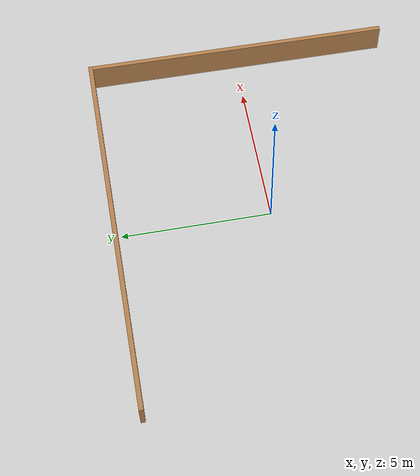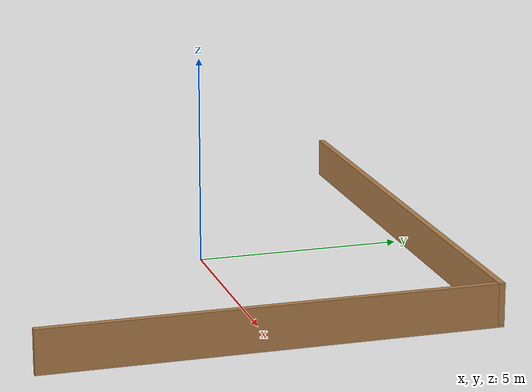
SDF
<?xml version='1.0'?>
<sdf version='1.7'>
  <model name='wooden_fence'>
    <link name='Wall_14'>
      <pose>6.425 0 -0.775596 0 -0 1.5708</pose>
      <self_collide>0</self_collide>
      <enable_wind>0</enable_wind>
      <kinematic>0</kinematic>
      <inertial>
        <inertia>
          <ixx>0</ixx>
          <ixy>0</ixy>
          <ixz>0</ixz>
          <iyy>0</iyy>
          <iyz>0</iyz>
          <izz>0</izz>
        </inertia>
        <mass>0</mass>
        <pose>0 0 0 0 -0 0</pose>
      </inertial>
      <visual name='Wall_14_Visual'>
        <pose>0 0 1.25 0 -0 0</pose>
        <geometry>
          <box>
            <size>10.5 0.15 1.0201</size>
          </box>
        </geometry>
        <material>
          <script>
            <uri>file://media/materials/scripts/gazebo.material</uri>
            <name>Gazebo/Wood</name>
          </script>
          <ambient>1 1 1 1</ambient>
          <shader type='pixel'/>
        </material>
        <meta>
          <layer>0</layer>
        </meta>
        <transparency>0</transparency>
        <cast_shadows>1</cast_shadows>
      </visual>
      <collision name='Wall_14_Collision'>
        <laser_retro>0</laser_retro>
        <max_contacts>10</max_contacts>
        <pose>0 0 1.25 0 -0 0</pose>
        <geometry>
          <box>
            <size>10.5 0.15 1.0201</size>
          </box>
        </geometry>
        <surface>
          <friction>
            <ode>
              <mu>1</mu>
              <mu2>1</mu2>
              <fdir1>0 0 0</fdir1>
              <slip1>0</slip1>
              <slip2>0</slip2>
            </ode>
            <torsional>
              <coefficient>1</coefficient>
              <patch_radius>0</patch_radius>
              <surface_radius>0</surface_radius>
              <use_patch_radius>1</use_patch_radius>
              <ode>
                <slip>0</slip>
              </ode>
            </torsional>
          </friction>
          <bounce>
            <restitution_coefficient>0</restitution_coefficient>
            <threshold>1e+06</threshold>
          </bounce>
          <contact>
            <collide_without_contact>0</collide_without_contact>
            <collide_without_contact_bitmask>1</collide_without_contact_bitmask>
            <collide_bitmask>1</collide_bitmask>
            <ode>
              <soft_cfm>0</soft_cfm>
              <soft_erp>0.2</soft_erp>
              <kp>1e+13</kp>
              <kd>1</kd>
              <max_vel>0.01</max_vel>
              <min_depth>0</min_depth>
            </ode>
            <bullet>
              <split_impulse>1</split_impulse>
              <split_impulse_penetration_threshold>-0.01</split_impulse_penetration_threshold>
              <soft_cfm>0</soft_cfm>
              <soft_erp>0.2</soft_erp>
              <kp>1e+13</kp>
              <kd>1</kd>
            </bullet>
          </contact>
        </surface>
      </collision>
    </link>
    <link name='Wall_16'>
      <pose>0 5.175 -0.744158 0 -0 3.14159</pose>
      <self_collide>0</self_collide>
      <enable_wind>0</enable_wind>
      <kinematic>0</kinematic>
      <inertial>
        <inertia>
          <ixx>0</ixx>
          <ixy>0</ixy>
          <ixz>0</ixz>
          <iyy>0</iyy>
          <iyz>0</iyz>
          <izz>0</izz>
        </inertia>
        <mass>0</mass>
        <pose>0 0 0 0 -0 0</pose>
      </inertial>
      <visual name='Wall_16_Visual'>
        <pose>0 0 1.25 0 -0 0</pose>
        <geometry>
          <box>
            <size>13 0.15 0.970964</size>
          </box>
        </geometry>
        <material>
          <script>
            <uri>file://media/materials/scripts/gazebo.material</uri>
            <name>Gazebo/Wood</name>
          </script>
          <ambient>1 1 1 1</ambient>
          <shader type='pixel'/>
        </material>
        <meta>
          <layer>0</layer>
        </meta>
        <transparency>0</transparency>
        <cast_shadows>1</cast_shadows>
      </visual>
      <collision name='Wall_16_Collision'>
        <laser_retro>0</laser_retro>
        <max_contacts>10</max_contacts>
        <pose>0 0 1.25 0 -0 0</pose>
        <geometry>
          <box>
            <size>13 0.15 0.970964</size>
          </box>
        </geometry>
        <surface>
          <friction>
            <ode>
              <mu>1</mu>
              <mu2>1</mu2>
              <fdir1>0 0 0</fdir1>
              <slip1>0</slip1>
              <slip2>0</slip2>
            </ode>
            <torsional>
              <coefficient>1</coefficient>
              <patch_radius>0</patch_radius>
              <surface_radius>0</surface_radius>
              <use_patch_radius>1</use_patch_radius>
              <ode>
                <slip>0</slip>
              </ode>
            </torsional>
          </friction>
          <bounce>
            <restitution_coefficient>0</restitution_coefficient>
            <threshold>1e+06</threshold>
          </bounce>
          <contact>
            <collide_without_contact>0</collide_without_contact>
            <collide_without_contact_bitmask>1</collide_without_contact_bitmask>
            <collide_bitmask>1</collide_bitmask>
            <ode>
              <soft_cfm>0</soft_cfm>
              <soft_erp>0.2</soft_erp>
              <kp>1e+13</kp>
              <kd>1</kd>
              <max_vel>0.01</max_vel>
              <min_depth>0</min_depth>
            </ode>
            <bullet>
              <split_impulse>1</split_impulse>
              <split_impulse_penetration_threshold>-0.01</split_impulse_penetration_threshold>
              <soft_cfm>0</soft_cfm>
              <soft_erp>0.2</soft_erp>
              <kp>1e+13</kp>
              <kd>1</kd>
            </bullet>
          </contact>
        </surface>
      </collision>
    </link>
    <static>1</static>
    <allow_auto_disable>1</allow_auto_disable>
  </model>
</sdf>
